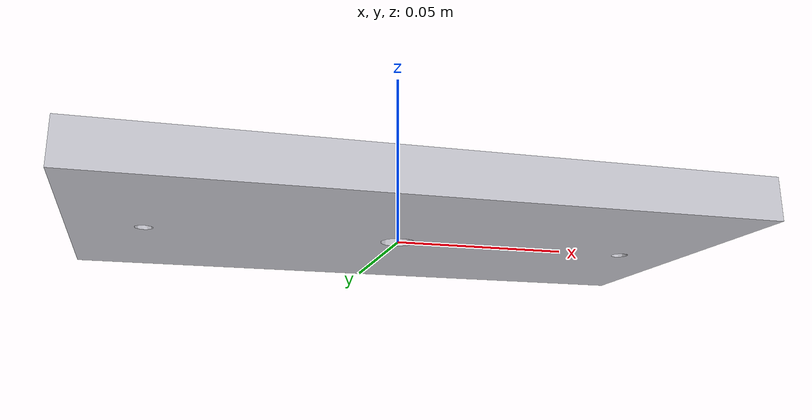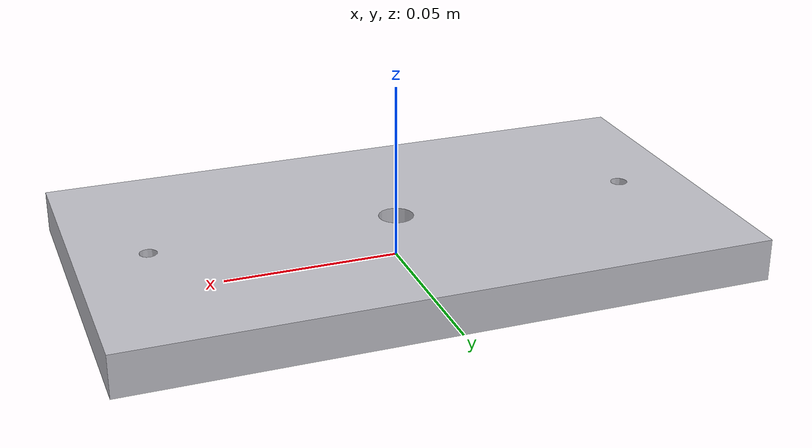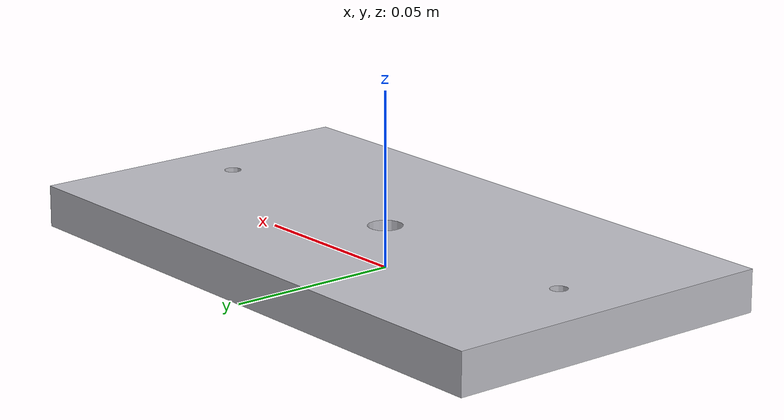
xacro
<?xml version="1.0" ?>
<robot name="plate" xmlns:xacro="http://www.ros.org/wiki/xacro">

<xacro:include filename="$(find plate_description)/urdf/materials.xacro" />
<xacro:include filename="$(find plate_description)/urdf/plate.ros2control" />
<xacro:include filename="$(find plate_description)/urdf/plate.gazebo" />
<link name="plate_base_link">
  <inertial>
    <origin xyz="-2.8714913691515598e-15 0.0 0.006000000000000001" rpy="0 0 0"/>
    <mass value="1.6845023239511934"/>
    <inertia ixx="0.001433" iyy="0.00458" izz="0.005973" ixy="0.0" iyz="0.0" ixz="0.0"/>
  </inertial>
  <visual>
    <origin xyz=" 0 0 0" rpy="0 0 0"/>
    <geometry>
      <mesh filename="file://$(find plate_description)/meshes/plate_base_link.stl" scale="0.001 0.001 0.001"/>
    </geometry>
    <material name="silver"/>
  </visual>
  <collision>
  <origin xyz=" 0 0 0" rpy="0 0 0"/> <geometry>
    <box size="0.175 0.095 0.010"/>
  </geometry>
</collision>
</link>

</robot>

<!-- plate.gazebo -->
<robot name="plate" xmlns:xacro="http://www.ros.org/wiki/xacro" >

<xacro:property name="body_color" value="Gazebo/Silver" />

<gazebo reference="plate_base_link">
  <material>${body_color}</material>
  <mu1>0.2</mu1>
  <mu2>0.2</mu2>
  <self_collide>false</self_collide>
  <gravity>true</gravity>
</gazebo>

</robot>
